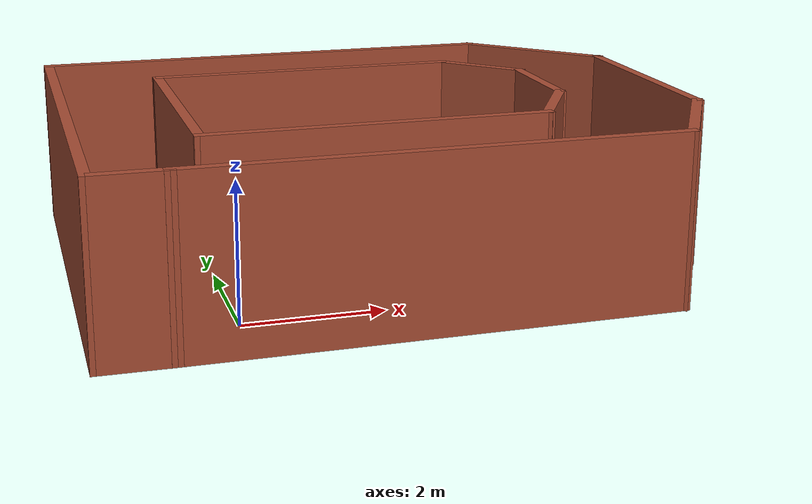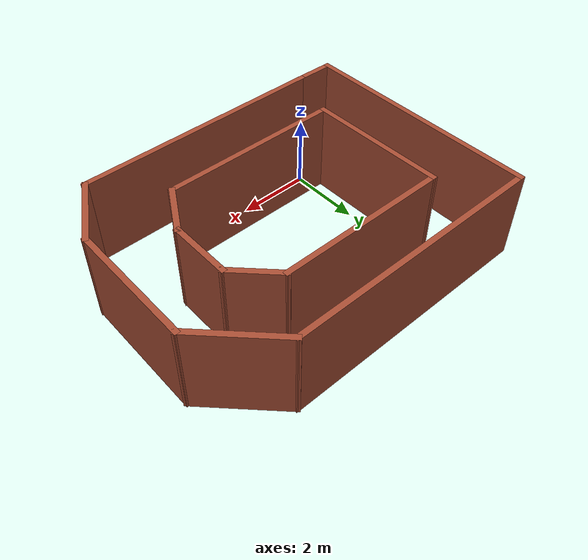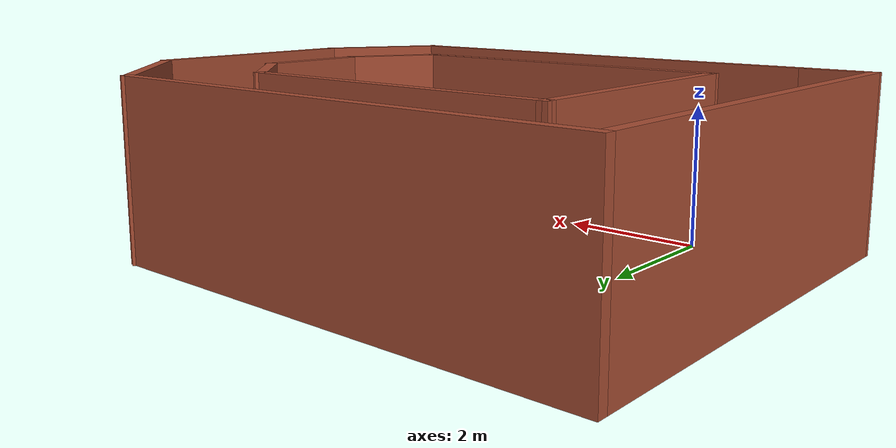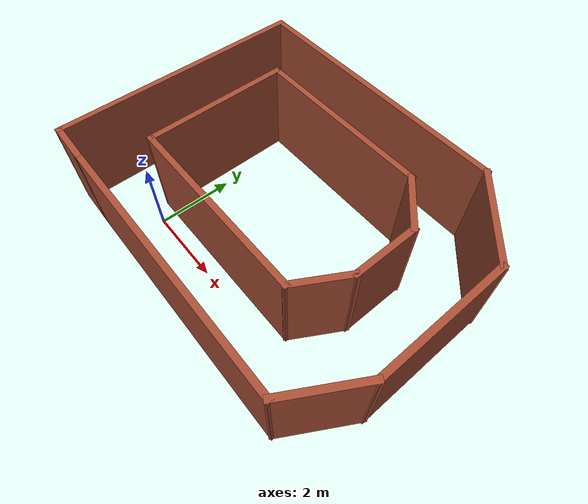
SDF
<?xml version='1.0'?>
<sdf version='1.6'>
  <model name='wall_following'>
    <pose frame=''>2.43367 2.24873 0 0 -0 0</pose>
    <link name='Wall_17'>
      <collision name='Wall_17_Collision'>
        <geometry>
          <box>
            <size>7 0.15 2.5</size>
          </box>
        </geometry>
        <pose frame=''>0 0 1.25 0 -0 0</pose>
      </collision>
      <visual name='Wall_17_Visual'>
        <pose frame=''>0 0 1.25 0 -0 0</pose>
        <geometry>
          <box>
            <size>7 0.15 2.5</size>
          </box>
        </geometry>
        <material>
          <script>
            <uri>file://media/materials/scripts/gazebo.material</uri>
            <name>Gazebo/Bricks</name>
          </script>
          <ambient>1 1 1 1</ambient>
        </material>
      </visual>
      <pose frame=''>0.01584 -3.30873 0 0 -0 3.14159</pose>
    </link>
    <link name='Wall_20'>
      <collision name='Wall_20_Collision'>
        <geometry>
          <box>
            <size>2 0.15 2.5</size>
          </box>
        </geometry>
        <pose frame=''>0 0 1.25 0 -0 0</pose>
      </collision>
      <visual name='Wall_20_Visual'>
        <pose frame=''>0 0 1.25 0 -0 0</pose>
        <geometry>
          <box>
            <size>2 0.15 2.5</size>
          </box>
        </geometry>
        <material>
          <script>
            <uri>file://media/materials/scripts/gazebo.material</uri>
            <name>Gazebo/Bricks</name>
          </script>
          <ambient>1 1 1 1</ambient>
        </material>
      </visual>
      <pose frame=''>3.90334 -2.50766 0 0 0 -2.0944</pose>
    </link>
    <link name='Wall_22'>
      <collision name='Wall_22_Collision'>
        <geometry>
          <box>
            <size>5 0.15 2.5</size>
          </box>
        </geometry>
        <pose frame=''>0 0 1.25 0 -0 0</pose>
      </collision>
      <visual name='Wall_22_Visual'>
        <pose frame=''>0 0 1.25 0 -0 0</pose>
        <geometry>
          <box>
            <size>5 0.15 2.5</size>
          </box>
        </geometry>
        <material>
          <script>
            <uri>file://media/materials/scripts/gazebo.material</uri>
            <name>Gazebo/Bricks</name>
          </script>
          <ambient>1 1 1 1</ambient>
        </material>
      </visual>
      <pose frame=''>-0.389971 -1.79293 0 0 -0 0</pose>
    </link>
    <link name='Wall_23'>
      <collision name='Wall_23_Collision'>
        <geometry>
          <box>
            <size>1.5 0.15 2.5</size>
          </box>
        </geometry>
        <pose frame=''>0 0 1.25 0 -0 0</pose>
      </collision>
      <visual name='Wall_23_Visual'>
        <pose frame=''>0 0 1.25 0 -0 0</pose>
        <geometry>
          <box>
            <size>1.5 0.15 2.5</size>
          </box>
        </geometry>
        <material>
          <script>
            <uri>file://media/materials/scripts/gazebo.material</uri>
            <name>Gazebo/Bricks</name>
          </script>
          <ambient>1 1 1 1</ambient>
        </material>
      </visual>
      <pose frame=''>2.37253 -1.20836 0 0 -0 1.0472</pose>
    </link>
    <link name='Wall_24'>
      <collision name='Wall_24_Collision'>
        <geometry>
          <box>
            <size>1.75 0.15 2.5</size>
          </box>
        </geometry>
        <pose frame=''>0 0 1.25 0 -0 0</pose>
      </collision>
      <visual name='Wall_24_Visual'>
        <pose frame=''>0 0 1.25 0 -0 0</pose>
        <geometry>
          <box>
            <size>1.75 0.15 2.5</size>
          </box>
        </geometry>
        <material>
          <script>
            <uri>file://media/materials/scripts/gazebo.material</uri>
            <name>Gazebo/Bricks</name>
          </script>
          <ambient>1 1 1 1</ambient>
        </material>
      </visual>
      <pose frame=''>2.71003 0.176205 0 0 -0 1.5708</pose>
    </link>
    <link name='Wall_25'>
      <collision name='Wall_25_Collision'>
        <geometry>
          <box>
            <size>1.5 0.15 2.5</size>
          </box>
        </geometry>
        <pose frame=''>0 0 1.25 0 -0 0</pose>
      </collision>
      <visual name='Wall_25_Visual'>
        <pose frame=''>0 0 1.25 0 -0 0</pose>
        <geometry>
          <box>
            <size>1.5 0.15 2.5</size>
          </box>
        </geometry>
        <material>
          <script>
            <uri>file://media/materials/scripts/gazebo.material</uri>
            <name>Gazebo/Bricks</name>
          </script>
          <ambient>1 1 1 1</ambient>
        </material>
      </visual>
      <pose frame=''>2.23273 1.4535 0 0 -0 2.35619</pose>
    </link>
    <link name='Wall_26'>
      <collision name='Wall_26_Collision'>
        <geometry>
          <box>
            <size>4.75 0.15 2.5</size>
          </box>
        </geometry>
        <pose frame=''>0 0 1.25 0 -0 0</pose>
      </collision>
      <visual name='Wall_26_Visual'>
        <pose frame=''>0 0 1.25 0 -0 0</pose>
        <geometry>
          <box>
            <size>4.75 0.15 2.5</size>
          </box>
        </geometry>
        <material>
          <script>
            <uri>file://media/materials/scripts/gazebo.material</uri>
            <name>Gazebo/Bricks</name>
          </script>
          <ambient>1 1 1 1</ambient>
        </material>
      </visual>
      <pose frame=''>-0.544565 1.9308 0 0 -0 3.14159</pose>
    </link>
    <link name='Wall_27'>
      <collision name='Wall_27_Collision'>
        <geometry>
          <box>
            <size>3.87385 0.15 2.5</size>
          </box>
        </geometry>
        <pose frame=''>0 0 1.25 0 -0 0</pose>
      </collision>
      <visual name='Wall_27_Visual'>
        <pose frame=''>0 0 1.25 0 -0 0</pose>
        <geometry>
          <box>
            <size>3.87385 0.15 2.5</size>
          </box>
        </geometry>
        <material>
          <script>
            <uri>file://media/materials/scripts/gazebo.material</uri>
            <name>Gazebo/Bricks</name>
          </script>
          <ambient>1 1 1 1</ambient>
        </material>
      </visual>
      <pose frame=''>-2.82977 0.068935 0 0 0 -1.56285</pose>
    </link>
    <link name='Wall_29'>
      <collision name='Wall_29_Collision'>
        <geometry>
          <box>
            <size>3.5 0.15 2.5</size>
          </box>
        </geometry>
        <pose frame=''>0 0 1.25 0 -0 0</pose>
      </collision>
      <visual name='Wall_29_Visual'>
        <pose frame=''>0 0 1.25 0 -0 0</pose>
        <geometry>
          <box>
            <size>3.5 0.15 2.5</size>
          </box>
        </geometry>
        <material>
          <script>
            <uri>file://media/materials/scripts/gazebo.material</uri>
            <name>Gazebo/Bricks</name>
          </script>
          <ambient>1 1 1 1</ambient>
        </material>
      </visual>
      <pose frame=''>4.36584 -0.031584 0 0 0 -1.5708</pose>
    </link>
    <link name='Wall_31'>
      <collision name='Wall_31_Collision'>
        <geometry>
          <box>
            <size>2.5 0.15 2.5</size>
          </box>
        </geometry>
        <pose frame=''>0 0 1.25 0 -0 0</pose>
      </collision>
      <visual name='Wall_31_Visual'>
        <pose frame=''>0 0 1.25 0 -0 0</pose>
        <geometry>
          <box>
            <size>2.5 0.15 2.5</size>
          </box>
        </geometry>
        <material>
          <script>
            <uri>file://media/materials/scripts/gazebo.material</uri>
            <name>Gazebo/Bricks</name>
          </script>
          <ambient>1 1 1 1</ambient>
        </material>
      </visual>
      <pose frame=''>3.53499 2.47427 0 0 0 -0.785398</pose>
    </link>
    <link name='Wall_33'>
      <collision name='Wall_33_Collision'>
        <geometry>
          <box>
            <size>7.25 0.15 2.5</size>
          </box>
        </geometry>
        <pose frame=''>0 0 1.25 0 -0 0</pose>
      </collision>
      <visual name='Wall_33_Visual'>
        <pose frame=''>0 0 1.25 0 -0 0</pose>
        <geometry>
          <box>
            <size>7.25 0.15 2.5</size>
          </box>
        </geometry>
        <material>
          <script>
            <uri>file://media/materials/scripts/gazebo.material</uri>
            <name>Gazebo/Bricks</name>
          </script>
          <ambient>1 1 1 1</ambient>
        </material>
      </visual>
      <pose frame=''>-0.845861 3.30512 0 0 -0 3.14159</pose>
    </link>
    <link name='Wall_34'>
      <collision name='Wall_34_Collision'>
        <geometry>
          <box>
            <size>6.75 0.15 2.5</size>
          </box>
        </geometry>
        <pose frame=''>0 0 1.25 0 -0 0</pose>
      </collision>
      <visual name='Wall_34_Visual'>
        <pose frame=''>0 0 1.25 0 -0 0</pose>
        <geometry>
          <box>
            <size>6.75 0.15 2.5</size>
          </box>
        </geometry>
        <material>
          <script>
            <uri>file://media/materials/scripts/gazebo.material</uri>
            <name>Gazebo/Bricks</name>
          </script>
          <ambient>1 1 1 1</ambient>
        </material>
      </visual>
      <pose frame=''>-4.39586 0.005117 0 0 0 -1.5708</pose>
    </link>
    <link name='Wall_35'>
      <collision name='Wall_35_Collision'>
        <geometry>
          <box>
            <size>1.1368 0.15 2.5</size>
          </box>
        </geometry>
        <pose frame=''>0 0 1.25 0 -0 0</pose>
      </collision>
      <visual name='Wall_35_Visual'>
        <pose frame=''>0 0 1.25 0 -0 0</pose>
        <geometry>
          <box>
            <size>1.1368 0.15 2.5</size>
          </box>
        </geometry>
        <material>
          <script>
            <uri>file://media/materials/scripts/gazebo.material</uri>
            <name>Gazebo/Bricks</name>
          </script>
          <ambient>1 1 1 1</ambient>
        </material>
      </visual>
      <pose frame=''>-3.90251 -3.30181 0 0 0 -0.014034</pose>
    </link>
    <static>1</static>
  </model>
</sdf>
